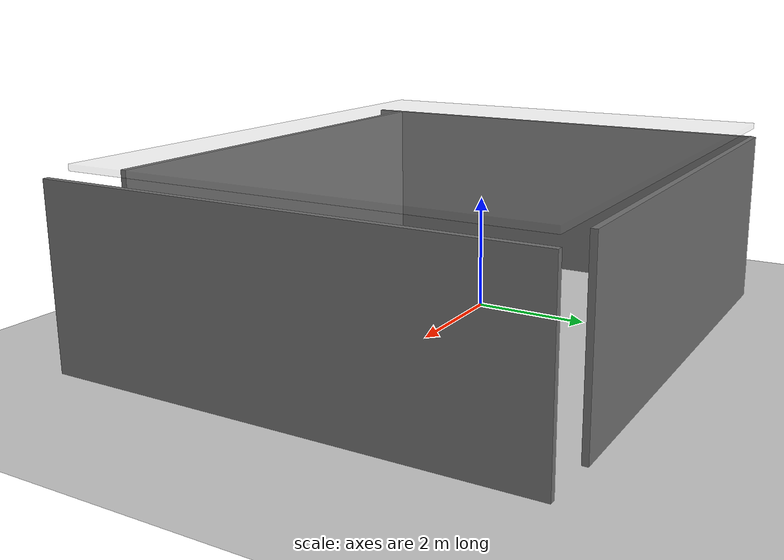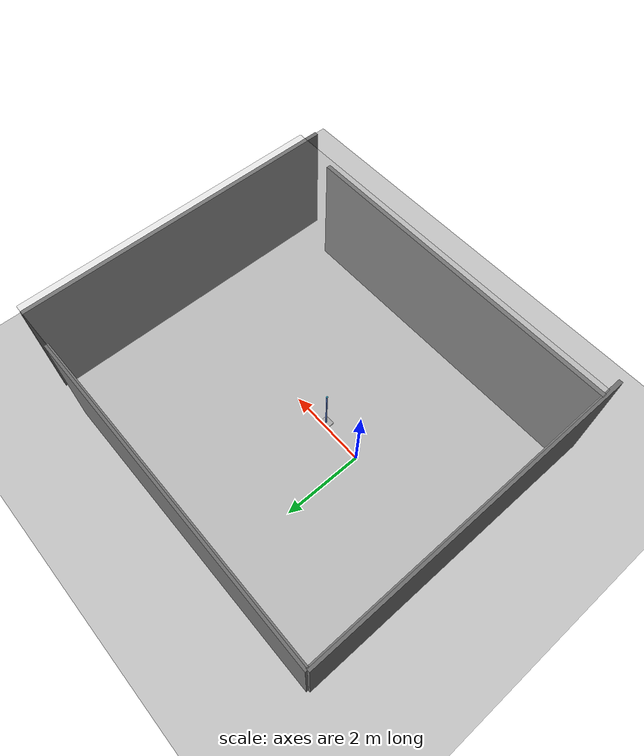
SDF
<?xml version='1.0' encoding='utf-8'?>
<sdf version="1.6"><world name="default">
<include><uri>model://sun</uri></include><include><uri>model://ground_plane</uri></include>
<physics name="default_physics" type="ode"><max_step_size>0.001</max_step_size><real_time_update_rate>1000</real_time_update_rate><ode><solver><type>quick</type><iters>100</iters></solver></ode></physics>
<scene><ambient>0.7 0.7 0.7 1</ambient><shadows>false</shadows></scene>
<model name="rear"><static>true</static><pose>-3 0 1.5 0 0 0</pose><link name="body">
      <inertial><mass>0.01</mass><inertia><ixx>1.041666666666667e-06</ixx><iyy>1.041666666666667e-06</iyy><izz>1.041666666666667e-06</izz></inertia></inertial>
      <collision name="collision"><geometry><box><size>.1 8 3</size></box></geometry><surface><friction><ode><mu>1.2</mu><mu2>1.2</mu2></ode></friction><contact><ode><kp>20000</kp><kd>40</kd><max_vel>0.1</max_vel><min_depth>0.0001</min_depth></ode></contact></surface></collision>
      <visual name="visual"><geometry><box><size>.1 8 3</size></box></geometry><material><ambient>.45 .45 .45 1</ambient><diffuse>.45 .45 .45 1</diffuse></material></visual>
    </link></model><model name="side_l"><static>true</static><pose>1 4 1.5 0 0 0</pose><link name="body">
      <inertial><mass>0.01</mass><inertia><ixx>1.041666666666667e-06</ixx><iyy>1.041666666666667e-06</iyy><izz>1.041666666666667e-06</izz></inertia></inertial>
      <collision name="collision"><geometry><box><size>8 .1 3</size></box></geometry><surface><friction><ode><mu>1.2</mu><mu2>1.2</mu2></ode></friction><contact><ode><kp>20000</kp><kd>40</kd><max_vel>0.1</max_vel><min_depth>0.0001</min_depth></ode></contact></surface></collision>
      <visual name="visual"><geometry><box><size>8 .1 3</size></box></geometry><material><ambient>.45 .45 .45 1</ambient><diffuse>.45 .45 .45 1</diffuse></material></visual>
    </link></model><model name="side_r"><static>true</static><pose>1 -3.5 1.5 0 0 0</pose><link name="body">
      <inertial><mass>0.01</mass><inertia><ixx>1.041666666666667e-06</ixx><iyy>1.041666666666667e-06</iyy><izz>1.041666666666667e-06</izz></inertia></inertial>
      <collision name="collision"><geometry><box><size>8 .1 3</size></box></geometry><surface><friction><ode><mu>1.2</mu><mu2>1.2</mu2></ode></friction><contact><ode><kp>20000</kp><kd>40</kd><max_vel>0.1</max_vel><min_depth>0.0001</min_depth></ode></contact></surface></collision>
      <visual name="visual"><geometry><box><size>8 .1 3</size></box></geometry><material><ambient>.45 .45 .45 1</ambient><diffuse>.45 .45 .45 1</diffuse></material></visual>
    </link></model><model name="far"><static>true</static><pose>6 0 1.5 0 0 0</pose><link name="body">
      <inertial><mass>0.01</mass><inertia><ixx>1.041666666666667e-06</ixx><iyy>1.041666666666667e-06</iyy><izz>1.041666666666667e-06</izz></inertia></inertial>
      <collision name="collision"><geometry><box><size>.1 8 3</size></box></geometry><surface><friction><ode><mu>1.2</mu><mu2>1.2</mu2></ode></friction><contact><ode><kp>20000</kp><kd>40</kd><max_vel>0.1</max_vel><min_depth>0.0001</min_depth></ode></contact></surface></collision>
      <visual name="visual"><geometry><box><size>.1 8 3</size></box></geometry><material><ambient>.45 .45 .45 1</ambient><diffuse>.45 .45 .45 1</diffuse></material></visual>
    </link></model><plugin name="clock_config" filename="libgazebo_ros_state.so"><update_rate>50</update_rate></plugin><model name="lidar_ceiling"><static>true</static><pose>1.5 0.25 3.2 0 0 0</pose><link name="body"><collision name="collision"><geometry><box><size>9 7.5 0.1</size></box></geometry></collision><visual name="visual"><geometry><box><size>9 7.5 0.1</size></box></geometry><material><ambient>.65 .65 .65 1</ambient><diffuse>.65 .65 .65 1</diffuse></material><transparency>0.85</transparency></visual></link></model><model name="catch_pedestal"><static>true</static><pose>1.1082898976699693 -0.06983016521509962 0 0 0 0</pose><link name="support">
<collision name="post"><pose>0 0 0.64 0 0 0</pose><geometry><box><size>0.026 0.026 1.28</size></box></geometry></collision>
<visual name="post"><pose>0 0 0.64 0 0 0</pose><geometry><box><size>0.026 0.026 1.28</size></box></geometry><material><ambient>0.2 0.35 0.7 1</ambient><diffuse>0.2 0.35 0.7 1</diffuse></material></visual>
<collision name="base"><pose>0 0 0.02 0 0 0</pose><geometry><box><size>0.25 0.25 0.04</size></box></geometry></collision>
<visual name="base"><pose>0 0 0.02 0 0 0</pose><geometry><box><size>0.25 0.25 0.04</size></box></geometry></visual>
</link></model><model name="catch_target"><static>false</static><pose>1.1082898976699693 -0.06983016521509962 1.2993546723651992 0 0 0</pose><link name="payload">
<inertial><mass>0.015</mass><inertia><ixx>3.7074240789116846e-06</ixx><iyy>3.7074240789116846e-06</iyy><izz>3.7074240789116846e-06</izz><ixy>0</ixy><ixz>0</ixz><iyz>0</iyz></inertia></inertial>
<collision name="collision"><geometry><box><size>0.03850934473039854 0.03850934473039854 0.03850934473039854</size></box></geometry><surface><friction><ode><mu>1.2</mu><mu2>1.2</mu2></ode></friction><contact><ode><kp>20000</kp><kd>40</kd><max_vel>0.1</max_vel><min_depth>0.0001</min_depth></ode></contact></surface></collision>
<visual name="unmarked_object"><geometry><box><size>0.03850934473039854 0.03850934473039854 0.03850934473039854</size></box></geometry><material><ambient>.12 .65 .8 1</ambient><diffuse>.12 .65 .8 1</diffuse></material></visual>
</link><plugin name="catch_evaluation_truth" filename="libgazebo_ros_p3d.so"><ros><namespace>/wholebody_catch/eval</namespace><remapping>odom:=object</remapping></ros><body_name>payload</body_name><frame_name>world</frame_name><update_rate>30</update_rate></plugin></model></world></sdf>
